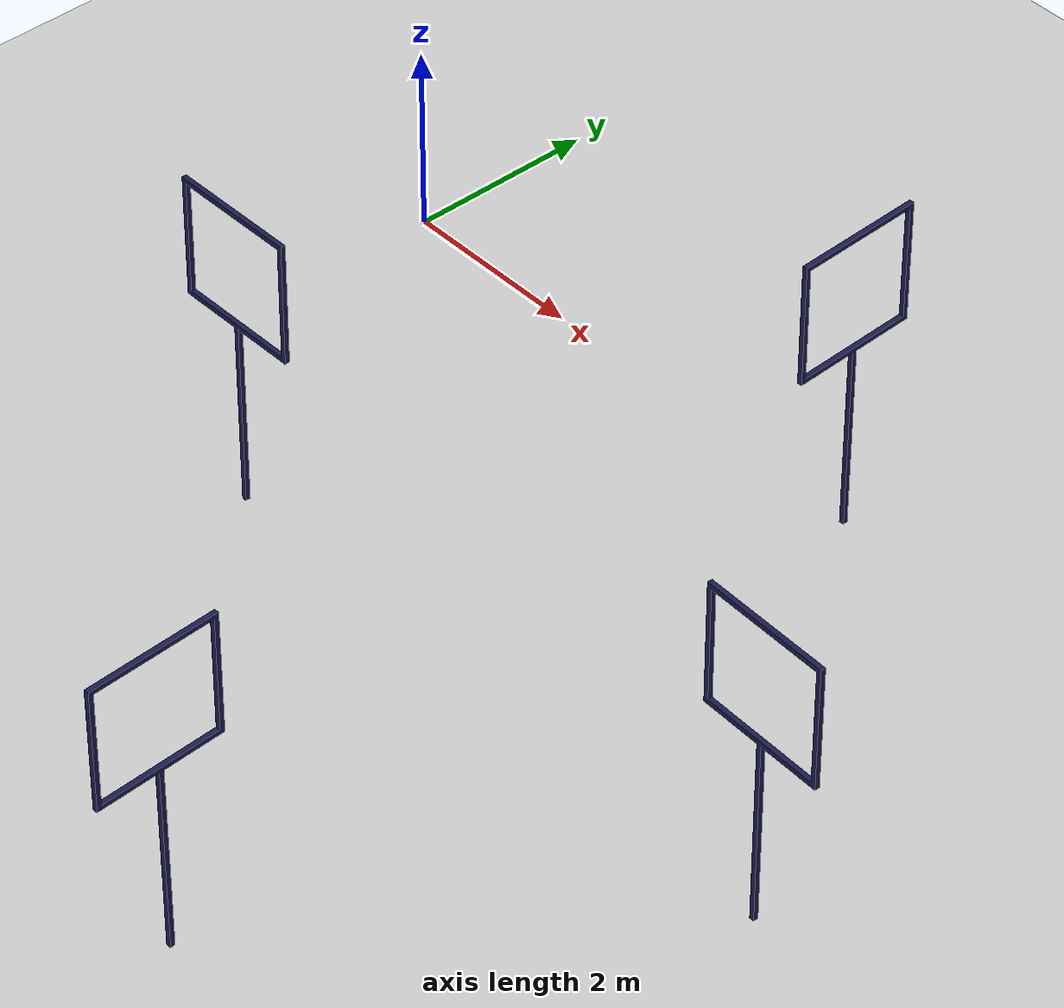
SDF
<sdf version="1.6">
 <world name="default">
  <light name="sun" type="directional">
   <pose>0 0 10 0 -0 0</pose>
   <diffuse>0.8 0.8 0.8 1</diffuse>
   <specular>0.2 0.2 0.2 1</specular>
   <attenuation>
    <range>1000</range>
    <constant>0.9</constant>
    <linear>0.01</linear>
    <quadratic>0.001</quadratic>
   </attenuation>
   <direction>-0.5 0.1 -0.9</direction>
  </light>
  <model name="ground_plane">
   <static>1</static>
   <link name="link">
    <collision name="collision">
     <geometry><plane><normal>0 0 1</normal><size>100 100</size></plane></geometry>
     <surface>
      <contact><collide_bitmask>65535</collide_bitmask></contact>
      <friction><ode><mu>100</mu><mu2>50</mu2></ode></friction>
     </surface>
    </collision>
    <visual name="visual">
     <cast_shadows>0</cast_shadows>
     <geometry><plane><normal>0 0 1</normal><size>100 100</size></plane></geometry>
     <material>
      <script><uri>file://media/materials/scripts/gazebo.material</uri><name>Gazebo/Grey</name></script>
     </material>
    </visual>
   </link>
  </model>
  <physics name="default_physics" default="0" type="ode">
   <ode>
    <solver>
     <type>quick</type>
     <iters>10</iters>
     <sor>1.3</sor>
     <use_dynamic_moi_rescaling>0</use_dynamic_moi_rescaling>
    </solver>
    <constraints>
     <cfm>0</cfm>
     <erp>0.2</erp>
     <contact_max_correcting_vel>100</contact_max_correcting_vel>
     <contact_surface_layer>0.001</contact_surface_layer>
    </constraints>
   </ode>
   <max_step_size>0.004</max_step_size>
   <real_time_factor>1</real_time_factor>
   <real_time_update_rate>250</real_time_update_rate>
  </physics>
  <gravity>0 0 -9.8066</gravity>
  <magnetic_field>6e-06 2.3e-05 -4.2e-05</magnetic_field>
  <atmosphere type="adiabatic"/>
  <scene><ambient>0.4 0.4 0.4 1</ambient><background>0.7 0.7 0.7 1</background><shadows>1</shadows></scene>
  <spherical_coordinates>
   <surface_model>EARTH_WGS84</surface_model>
   <latitude_deg>0</latitude_deg>
   <longitude_deg>0</longitude_deg>
   <elevation>0</elevation>
   <heading_deg>0</heading_deg>
  </spherical_coordinates>
  <model name="iROS2016 Track_0">
   <link name="gate_05">
    <pose>13 -6 0 0 -0 -1.28319</pose>
    <visual name="visual">
     <geometry><mesh><uri>model://iros2016_track/gates/05.dae</uri></mesh></geometry>
     <material>
      <ambient>0 0 1 1</ambient>
      <diffuse>0.1 0.1 0.3 1</diffuse>
      <specular>0 0 0.4 0</specular>
      <emissive>0 0 0.4 1</emissive>
     </material>
    </visual>
   </link>
   <static>1</static>
   <pose>-5.27217 8.94725 0 0 0 -0.24698</pose>
  </model>
  <audio><device>default</device></audio>
  <model name="iROS2016 Track_0_clone">
   <link name="gate_05">
    <pose>13 -6 0 0 -0 -1.28319</pose>
    <visual name="visual">
     <geometry><mesh><uri>model://iros2016_track/gates/05.dae</uri></mesh></geometry>
     <material>
      <ambient>0 0 1 1</ambient>
      <diffuse>0.1 0.1 0.3 1</diffuse>
      <specular>0 0 0.4 0</specular>
      <emissive>0 0 0.4 1</emissive>
     </material>
    </visual>
   </link>
   <static>1</static>
   <pose>18.7807 6.3092 0 0 -0 -1.89481</pose>
  </model>
  <model name="iROS2016 Track_0_clone_0">
   <link name="gate_05">
    <pose>13 -6 0 0 -0 -1.28319</pose>
    <visual name="visual">
     <geometry><mesh><uri>model://iros2016_track/gates/05.dae</uri></mesh></geometry>
     <material>
      <ambient>0 0 1 1</ambient>
      <diffuse>0.1 0.1 0.3 1</diffuse>
      <specular>0 0 0.4 0</specular>
      <emissive>0 0 0.4 1</emissive>
     </material>
    </visual>
   </link>
   <static>1</static>
   <pose>-5.15877 1.08039 0 0 0 -0.24698</pose>
  </model>
  <model name="iROS2016 Track_0_clone_1">
   <link name="gate_05">
    <pose>13 -6 0 0 -0 -1.28319</pose>
    <visual name="visual">
     <geometry><mesh><uri>model://iros2016_track/gates/05.dae</uri></mesh></geometry>
     <material>
      <ambient>0 0 1 1</ambient>
      <diffuse>0.1 0.1 0.3 1</diffuse>
      <specular>0 0 0.4 0</specular>
      <emissive>0 0 0.4 1</emissive>
     </material>
    </visual>
   </link>
   <static>1</static>
   <pose>11.4115 6.92995 0 0 0 -1.85311</pose>
  </model>
 </world>
</sdf>
